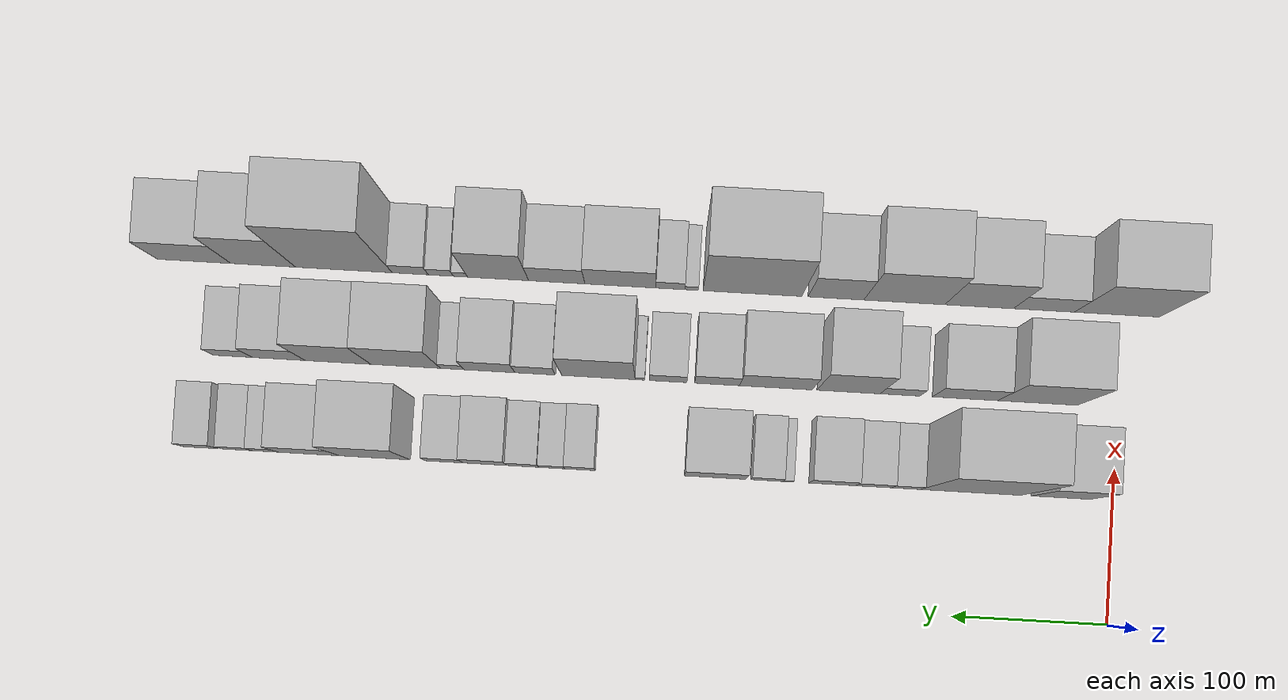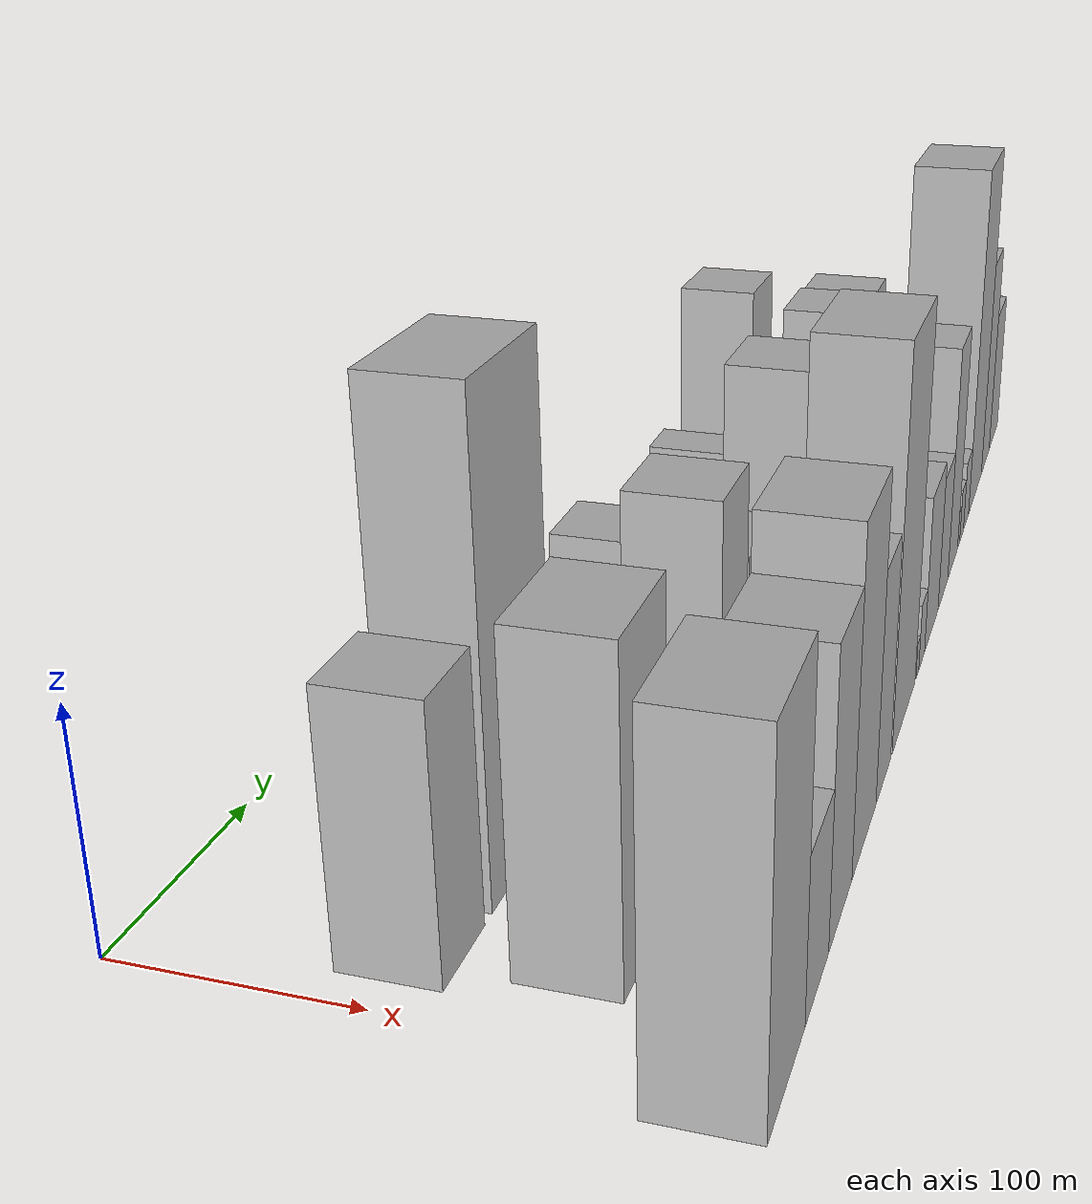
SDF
<sdf version="1.6">
 <world name="default">
  <model name="building_17">
   <static>1</static>
   <pose>100.0000 33.8189 0 0.000000 0.000000 0.000000</pose>
   <link name="link">
    <pose>0 0 55.50 0 0 0</pose>
    <collision name="collision"><geometry><box><size>40.0000 37.5027 111.0000</size></box></geometry></collision>
    <visual name="visual">
     <cast_shadows>0</cast_shadows>
     <geometry><box><size>40.0000 37.5027 111.0000</size></box></geometry>
     <material>
      <script>
       <uri>model://HANNAS_wall/materials/scripts</uri>
       <uri>model://HANNAS_wall/materials/textures</uri>
       <name>vrc/HANNAS_wall</name>
      </script>
     </material>
    </visual>
   </link>
  </model>
  <model name="building_18">
   <static>1</static>
   <pose>100.0000 91.8025 0 0.000000 0.000000 0.000000</pose>
   <link name="link">
    <pose>0 0 100.50 0 0 0</pose>
    <collision name="collision"><geometry><box><size>40.0000 64.4647 201.0000</size></box></geometry></collision>
    <visual name="visual">
     <cast_shadows>0</cast_shadows>
     <geometry><box><size>40.0000 64.4647 201.0000</size></box></geometry>
     <material>
      <script>
       <uri>model://HANNAS_wall/materials/scripts</uri>
       <uri>model://HANNAS_wall/materials/textures</uri>
       <name>vrc/HANNAS_wall</name>
      </script>
     </material>
    </visual>
   </link>
  </model>
  <model name="building_19">
   <static>1</static>
   <pose>100.0000 133.2769 0 0.000000 0.000000 0.000000</pose>
   <link name="link">
    <pose>0 0 18.00 0 0 0</pose>
    <collision name="collision"><geometry><box><size>40.0000 18.4841 36.0000</size></box></geometry></collision>
    <visual name="visual">
     <cast_shadows>0</cast_shadows>
     <geometry><box><size>40.0000 18.4841 36.0000</size></box></geometry>
     <material>
      <script>
       <uri>model://HANNAS_wall/materials/scripts</uri>
       <uri>model://HANNAS_wall/materials/textures</uri>
       <name>vrc/HANNAS_wall</name>
      </script>
     </material>
    </visual>
   </link>
  </model>
  <model name="building_20">
   <static>1</static>
   <pose>100.0000 154.1887 0 0.000000 0.000000 0.000000</pose>
   <link name="link">
    <pose>0 0 19.50 0 0 0</pose>
    <collision name="collision"><geometry><box><size>40.0000 23.3394 39.0000</size></box></geometry></collision>
    <visual name="visual">
     <cast_shadows>0</cast_shadows>
     <geometry><box><size>40.0000 23.3394 39.0000</size></box></geometry>
     <material>
      <script>
       <uri>model://HANNAS_wall/materials/scripts</uri>
       <uri>model://HANNAS_wall/materials/textures</uri>
       <name>vrc/HANNAS_wall</name>
      </script>
     </material>
    </visual>
   </link>
  </model>
  <model name="building_21">
   <static>1</static>
   <pose>100.0000 180.8132 0 0.000000 0.000000 0.000000</pose>
   <link name="link">
    <pose>0 0 25.50 0 0 0</pose>
    <collision name="collision"><geometry><box><size>40.0000 29.9097 51.0000</size></box></geometry></collision>
    <visual name="visual">
     <cast_shadows>0</cast_shadows>
     <geometry><box><size>40.0000 29.9097 51.0000</size></box></geometry>
     <material>
      <script>
       <uri>model://HANNAS_wall/materials/scripts</uri>
       <uri>model://HANNAS_wall/materials/textures</uri>
       <name>vrc/HANNAS_wall</name>
      </script>
     </material>
    </visual>
   </link>
  </model>
  <model name="building_22">
   <static>1</static>
   <pose>100.0000 209.1405 0 0.000000 0.000000 0.000000</pose>
   <link name="link">
    <pose>0 0 7.50 0 0 0</pose>
    <collision name="collision"><geometry><box><size>40.0000 6.7450 15.0000</size></box></geometry></collision>
    <visual name="visual">
     <cast_shadows>0</cast_shadows>
     <geometry><box><size>40.0000 6.7450 15.0000</size></box></geometry>
     <material>
      <script>
       <uri>model://HANNAS_wall/materials/scripts</uri>
       <uri>model://HANNAS_wall/materials/textures</uri>
       <name>vrc/HANNAS_wall</name>
      </script>
     </material>
    </visual>
   </link>
  </model>
  <model name="building_23">
   <static>1</static>
   <pose>100.0000 222.8368 0 0.000000 0.000000 0.000000</pose>
   <link name="link">
    <pose>0 0 18.00 0 0 0</pose>
    <collision name="collision"><geometry><box><size>40.0000 20.6476 36.0000</size></box></geometry></collision>
    <visual name="visual">
     <cast_shadows>0</cast_shadows>
     <geometry><box><size>40.0000 20.6476 36.0000</size></box></geometry>
     <material>
      <script>
       <uri>model://HANNAS_wall/materials/scripts</uri>
       <uri>model://HANNAS_wall/materials/textures</uri>
       <name>vrc/HANNAS_wall</name>
      </script>
     </material>
    </visual>
   </link>
  </model>
  <model name="building_24">
   <static>1</static>
   <pose>100.0000 255.9552 0 0.000000 0.000000 0.000000</pose>
   <link name="link">
    <pose>0 0 34.50 0 0 0</pose>
    <collision name="collision"><geometry><box><size>40.0000 39.5892 69.0000</size></box></geometry></collision>
    <visual name="visual">
     <cast_shadows>0</cast_shadows>
     <geometry><box><size>40.0000 39.5892 69.0000</size></box></geometry>
     <material>
      <script>
       <uri>model://HANNAS_wall/materials/scripts</uri>
       <uri>model://HANNAS_wall/materials/textures</uri>
       <name>vrc/HANNAS_wall</name>
      </script>
     </material>
    </visual>
   </link>
  </model>
  <model name="building_25">
   <static>1</static>
   <pose>100.0000 342.8090 0 0.000000 0.000000 0.000000</pose>
   <link name="link">
    <pose>0 0 18.00 0 0 0</pose>
    <collision name="collision"><geometry><box><size>40.0000 19.3728 36.0000</size></box></geometry></collision>
    <visual name="visual">
     <cast_shadows>0</cast_shadows>
     <geometry><box><size>40.0000 19.3728 36.0000</size></box></geometry>
     <material>
      <script>
       <uri>model://HANNAS_wall/materials/scripts</uri>
       <uri>model://HANNAS_wall/materials/textures</uri>
       <name>vrc/HANNAS_wall</name>
      </script>
     </material>
    </visual>
   </link>
  </model>
  <model name="building_26">
   <static>1</static>
   <pose>100.0000 360.8640 0 0.000000 0.000000 0.000000</pose>
   <link name="link">
    <pose>0 0 15.00 0 0 0</pose>
    <collision name="collision"><geometry><box><size>40.0000 16.7372 30.0000</size></box></geometry></collision>
    <visual name="visual">
     <cast_shadows>0</cast_shadows>
     <geometry><box><size>40.0000 16.7372 30.0000</size></box></geometry>
     <material>
      <script>
       <uri>model://HANNAS_wall/materials/scripts</uri>
       <uri>model://HANNAS_wall/materials/textures</uri>
       <name>vrc/HANNAS_wall</name>
      </script>
     </material>
    </visual>
   </link>
  </model>
  <model name="building_27">
   <static>1</static>
   <pose>100.0000 379.3544 0 0.000000 0.000000 0.000000</pose>
   <link name="link">
    <pose>0 0 18.00 0 0 0</pose>
    <collision name="collision"><geometry><box><size>40.0000 20.2437 36.0000</size></box></geometry></collision>
    <visual name="visual">
     <cast_shadows>0</cast_shadows>
     <geometry><box><size>40.0000 20.2437 36.0000</size></box></geometry>
     <material>
      <script>
       <uri>model://HANNAS_wall/materials/scripts</uri>
       <uri>model://HANNAS_wall/materials/textures</uri>
       <name>vrc/HANNAS_wall</name>
      </script>
     </material>
    </visual>
   </link>
  </model>
  <model name="building_28">
   <static>1</static>
   <pose>100.0000 403.6639 0 0.000000 0.000000 0.000000</pose>
   <link name="link">
    <pose>0 0 27.00 0 0 0</pose>
    <collision name="collision"><geometry><box><size>40.0000 28.3753 54.0000</size></box></geometry></collision>
    <visual name="visual">
     <cast_shadows>0</cast_shadows>
     <geometry><box><size>40.0000 28.3753 54.0000</size></box></geometry>
     <material>
      <script>
       <uri>model://HANNAS_wall/materials/scripts</uri>
       <uri>model://HANNAS_wall/materials/textures</uri>
       <name>vrc/HANNAS_wall</name>
      </script>
     </material>
    </visual>
   </link>
  </model>
  <model name="building_29">
   <static>1</static>
   <pose>100.0000 429.9659 0 0.000000 0.000000 0.000000</pose>
   <link name="link">
    <pose>0 0 21.00 0 0 0</pose>
    <collision name="collision"><geometry><box><size>40.0000 24.2287 42.0000</size></box></geometry></collision>
    <visual name="visual">
     <cast_shadows>0</cast_shadows>
     <geometry><box><size>40.0000 24.2287 42.0000</size></box></geometry>
     <material>
      <script>
       <uri>model://HANNAS_wall/materials/scripts</uri>
       <uri>model://HANNAS_wall/materials/textures</uri>
       <name>vrc/HANNAS_wall</name>
      </script>
     </material>
    </visual>
   </link>
  </model>
  <model name="building_30">
   <static>1</static>
   <pose>100.0000 474.9152 0 0.000000 0.000000 0.000000</pose>
   <link name="link">
    <pose>0 0 61.50 0 0 0</pose>
    <collision name="collision"><geometry><box><size>40.0000 45.6700 123.0000</size></box></geometry></collision>
    <visual name="visual">
     <cast_shadows>0</cast_shadows>
     <geometry><box><size>40.0000 45.6700 123.0000</size></box></geometry>
     <material>
      <script>
       <uri>model://HANNAS_wall/materials/scripts</uri>
       <uri>model://HANNAS_wall/materials/textures</uri>
       <name>vrc/HANNAS_wall</name>
      </script>
     </material>
    </visual>
   </link>
  </model>
  <model name="building_31">
   <static>1</static>
   <pose>100.0000 517.3630 0 0.000000 0.000000 0.000000</pose>
   <link name="link">
    <pose>0 0 34.50 0 0 0</pose>
    <collision name="collision"><geometry><box><size>40.0000 39.2256 69.0000</size></box></geometry></collision>
    <visual name="visual">
     <cast_shadows>0</cast_shadows>
     <geometry><box><size>40.0000 39.2256 69.0000</size></box></geometry>
     <material>
      <script>
       <uri>model://HANNAS_wall/materials/scripts</uri>
       <uri>model://HANNAS_wall/materials/textures</uri>
       <name>vrc/HANNAS_wall</name>
      </script>
     </material>
    </visual>
   </link>
  </model>
  <model name="building_32">
   <static>1</static>
   <pose>100.0000 545.3870 0 0.000000 0.000000 0.000000</pose>
   <link name="link">
    <pose>0 0 16.50 0 0 0</pose>
    <collision name="collision"><geometry><box><size>40.0000 16.8225 33.0000</size></box></geometry></collision>
    <visual name="visual">
     <cast_shadows>0</cast_shadows>
     <geometry><box><size>40.0000 16.8225 33.0000</size></box></geometry>
     <material>
      <script>
       <uri>model://HANNAS_wall/materials/scripts</uri>
       <uri>model://HANNAS_wall/materials/textures</uri>
       <name>vrc/HANNAS_wall</name>
      </script>
     </material>
    </visual>
   </link>
  </model>
  <model name="building_33">
   <static>1</static>
   <pose>100.0000 563.3105 0 0.000000 0.000000 0.000000</pose>
   <link name="link">
    <pose>0 0 16.50 0 0 0</pose>
    <collision name="collision"><geometry><box><size>40.0000 19.0244 33.0000</size></box></geometry></collision>
    <visual name="visual">
     <cast_shadows>0</cast_shadows>
     <geometry><box><size>40.0000 19.0244 33.0000</size></box></geometry>
     <material>
      <script>
       <uri>model://HANNAS_wall/materials/scripts</uri>
       <uri>model://HANNAS_wall/materials/textures</uri>
       <name>vrc/HANNAS_wall</name>
      </script>
     </material>
    </visual>
   </link>
  </model>
  <model name="building_34">
   <static>1</static>
   <pose>100.0000 586.9795 0 0.000000 0.000000 0.000000</pose>
   <link name="link">
    <pose>0 0 19.50 0 0 0</pose>
    <collision name="collision"><geometry><box><size>40.0000 22.3135 39.0000</size></box></geometry></collision>
    <visual name="visual">
     <cast_shadows>0</cast_shadows>
     <geometry><box><size>40.0000 22.3135 39.0000</size></box></geometry>
     <material>
      <script>
       <uri>model://HANNAS_wall/materials/scripts</uri>
       <uri>model://HANNAS_wall/materials/textures</uri>
       <name>vrc/HANNAS_wall</name>
      </script>
     </material>
    </visual>
   </link>
  </model>
  <model name="building_54">
   <static>1</static>
   <pose>160.0000 51.5377 0 0.000000 0.000000 0.000000</pose>
   <link name="link">
    <pose>0 0 67.50 0 0 0</pose>
    <collision name="collision"><geometry><box><size>40.0000 51.4670 135.0000</size></box></geometry></collision>
    <visual name="visual">
     <cast_shadows>0</cast_shadows>
     <geometry><box><size>40.0000 51.4670 135.0000</size></box></geometry>
     <material>
      <script>
       <uri>model://HANNAS_wall/materials/scripts</uri>
       <uri>model://HANNAS_wall/materials/textures</uri>
       <name>vrc/HANNAS_wall</name>
      </script>
     </material>
    </visual>
   </link>
  </model>
  <model name="building_55">
   <static>1</static>
   <pose>160.0000 98.3015 0 0.000000 0.000000 0.000000</pose>
   <link name="link">
    <pose>0 0 37.50 0 0 0</pose>
    <collision name="collision"><geometry><box><size>40.0000 42.0606 75.0000</size></box></geometry></collision>
    <visual name="visual">
     <cast_shadows>0</cast_shadows>
     <geometry><box><size>40.0000 42.0606 75.0000</size></box></geometry>
     <material>
      <script>
       <uri>model://HANNAS_wall/materials/scripts</uri>
       <uri>model://HANNAS_wall/materials/textures</uri>
       <name>vrc/HANNAS_wall</name>
      </script>
     </material>
    </visual>
   </link>
  </model>
  <model name="building_56">
   <static>1</static>
   <pose>160.0000 140.1348 0 0.000000 0.000000 0.000000</pose>
   <link name="link">
    <pose>0 0 24.00 0 0 0</pose>
    <collision name="collision"><geometry><box><size>40.0000 25.6060 48.0000</size></box></geometry></collision>
    <visual name="visual">
     <cast_shadows>0</cast_shadows>
     <geometry><box><size>40.0000 25.6060 48.0000</size></box></geometry>
     <material>
      <script>
       <uri>model://HANNAS_wall/materials/scripts</uri>
       <uri>model://HANNAS_wall/materials/textures</uri>
       <name>vrc/HANNAS_wall</name>
      </script>
     </material>
    </visual>
   </link>
  </model>
  <model name="building_57">
   <static>1</static>
   <pose>160.0000 173.3539 0 0.000000 0.000000 0.000000</pose>
   <link name="link">
    <pose>0 0 64.50 0 0 0</pose>
    <collision name="collision"><geometry><box><size>40.0000 40.8324 129.0000</size></box></geometry></collision>
    <visual name="visual">
     <cast_shadows>0</cast_shadows>
     <geometry><box><size>40.0000 40.8324 129.0000</size></box></geometry>
     <material>
      <script>
       <uri>model://HANNAS_wall/materials/scripts</uri>
       <uri>model://HANNAS_wall/materials/textures</uri>
       <name>vrc/HANNAS_wall</name>
      </script>
     </material>
    </visual>
   </link>
  </model>
  <model name="building_58">
   <static>1</static>
   <pose>160.0000 220.1656 0 0.000000 0.000000 0.000000</pose>
   <link name="link">
    <pose>0 0 43.50 0 0 0</pose>
    <collision name="collision"><geometry><box><size>40.0000 46.7909 87.0000</size></box></geometry></collision>
    <visual name="visual">
     <cast_shadows>0</cast_shadows>
     <geometry><box><size>40.0000 46.7909 87.0000</size></box></geometry>
     <material>
      <script>
       <uri>model://HANNAS_wall/materials/scripts</uri>
       <uri>model://HANNAS_wall/materials/textures</uri>
       <name>vrc/HANNAS_wall</name>
      </script>
     </material>
    </visual>
   </link>
  </model>
  <model name="building_59">
   <static>1</static>
   <pose>160.0000 258.0709 0 0.000000 0.000000 0.000000</pose>
   <link name="link">
    <pose>0 0 28.50 0 0 0</pose>
    <collision name="collision"><geometry><box><size>40.0000 29.0197 57.0000</size></box></geometry></collision>
    <visual name="visual">
     <cast_shadows>0</cast_shadows>
     <geometry><box><size>40.0000 29.0197 57.0000</size></box></geometry>
     <material>
      <script>
       <uri>model://HANNAS_wall/materials/scripts</uri>
       <uri>model://HANNAS_wall/materials/textures</uri>
       <name>vrc/HANNAS_wall</name>
      </script>
     </material>
    </visual>
   </link>
  </model>
  <model name="building_60">
   <static>1</static>
   <pose>160.0000 289.6315 0 0.000000 0.000000 0.000000</pose>
   <link name="link">
    <pose>0 0 22.50 0 0 0</pose>
    <collision name="collision"><geometry><box><size>40.0000 24.1014 45.0000</size></box></geometry></collision>
    <visual name="visual">
     <cast_shadows>0</cast_shadows>
     <geometry><box><size>40.0000 24.1014 45.0000</size></box></geometry>
     <material>
      <script>
       <uri>model://HANNAS_wall/materials/scripts</uri>
       <uri>model://HANNAS_wall/materials/textures</uri>
       <name>vrc/HANNAS_wall</name>
      </script>
     </material>
    </visual>
   </link>
  </model>
  <model name="building_61">
   <static>1</static>
   <pose>160.0000 307.8120 0 0.000000 0.000000 0.000000</pose>
   <link name="link">
    <pose>0 0 7.50 0 0 0</pose>
    <collision name="collision"><geometry><box><size>40.0000 6.2595 15.0000</size></box></geometry></collision>
    <visual name="visual">
     <cast_shadows>0</cast_shadows>
     <geometry><box><size>40.0000 6.2595 15.0000</size></box></geometry>
     <material>
      <script>
       <uri>model://HANNAS_wall/materials/scripts</uri>
       <uri>model://HANNAS_wall/materials/textures</uri>
       <name>vrc/HANNAS_wall</name>
      </script>
     </material>
    </visual>
   </link>
  </model>
  <model name="building_62">
   <static>1</static>
   <pose>160.0000 334.6211 0 0.000000 0.000000 0.000000</pose>
   <link name="link">
    <pose>0 0 64.50 0 0 0</pose>
    <collision name="collision"><geometry><box><size>40.0000 47.3587 129.0000</size></box></geometry></collision>
    <visual name="visual">
     <cast_shadows>0</cast_shadows>
     <geometry><box><size>40.0000 47.3587 129.0000</size></box></geometry>
     <material>
      <script>
       <uri>model://HANNAS_wall/materials/scripts</uri>
       <uri>model://HANNAS_wall/materials/textures</uri>
       <name>vrc/HANNAS_wall</name>
      </script>
     </material>
    </visual>
   </link>
  </model>
  <model name="building_63">
   <static>1</static>
   <pose>160.0000 375.3211 0 0.000000 0.000000 0.000000</pose>
   <link name="link">
    <pose>0 0 25.50 0 0 0</pose>
    <collision name="collision"><geometry><box><size>40.0000 26.0413 51.0000</size></box></geometry></collision>
    <visual name="visual">
     <cast_shadows>0</cast_shadows>
     <geometry><box><size>40.0000 26.0413 51.0000</size></box></geometry>
     <material>
      <script>
       <uri>model://HANNAS_wall/materials/scripts</uri>
       <uri>model://HANNAS_wall/materials/textures</uri>
       <name>vrc/HANNAS_wall</name>
      </script>
     </material>
    </visual>
   </link>
  </model>
  <model name="building_64">
   <static>1</static>
   <pose>160.0000 404.7702 0 0.000000 0.000000 0.000000</pose>
   <link name="link">
    <pose>0 0 31.50 0 0 0</pose>
    <collision name="collision"><geometry><box><size>40.0000 32.8568 63.0000</size></box></geometry></collision>
    <visual name="visual">
     <cast_shadows>0</cast_shadows>
     <geometry><box><size>40.0000 32.8568 63.0000</size></box></geometry>
     <material>
      <script>
       <uri>model://HANNAS_wall/materials/scripts</uri>
       <uri>model://HANNAS_wall/materials/textures</uri>
       <name>vrc/HANNAS_wall</name>
      </script>
     </material>
    </visual>
   </link>
  </model>
  <model name="building_65">
   <static>1</static>
   <pose>160.0000 428.8798 0 0.000000 0.000000 0.000000</pose>
   <link name="link">
    <pose>0 0 15.00 0 0 0</pose>
    <collision name="collision"><geometry><box><size>40.0000 15.3624 30.0000</size></box></geometry></collision>
    <visual name="visual">
     <cast_shadows>0</cast_shadows>
     <geometry><box><size>40.0000 15.3624 30.0000</size></box></geometry>
     <material>
      <script>
       <uri>model://HANNAS_wall/materials/scripts</uri>
       <uri>model://HANNAS_wall/materials/textures</uri>
       <name>vrc/HANNAS_wall</name>
      </script>
     </material>
    </visual>
   </link>
  </model>
  <model name="building_66">
   <static>1</static>
   <pose>160.0000 459.0435 0 0.000000 0.000000 0.000000</pose>
   <link name="link">
    <pose>0 0 60.00 0 0 0</pose>
    <collision name="collision"><geometry><box><size>40.0000 44.9650 120.0000</size></box></geometry></collision>
    <visual name="visual">
     <cast_shadows>0</cast_shadows>
     <geometry><box><size>40.0000 44.9650 120.0000</size></box></geometry>
     <material>
      <script>
       <uri>model://HANNAS_wall/materials/scripts</uri>
       <uri>model://HANNAS_wall/materials/textures</uri>
       <name>vrc/HANNAS_wall</name>
      </script>
     </material>
    </visual>
   </link>
  </model>
  <model name="building_67">
   <static>1</static>
   <pose>160.0000 502.7037 0 0.000000 0.000000 0.000000</pose>
   <link name="link">
    <pose>0 0 58.50 0 0 0</pose>
    <collision name="collision"><geometry><box><size>40.0000 42.3555 117.0000</size></box></geometry></collision>
    <visual name="visual">
     <cast_shadows>0</cast_shadows>
     <geometry><box><size>40.0000 42.3555 117.0000</size></box></geometry>
     <material>
      <script>
       <uri>model://HANNAS_wall/materials/scripts</uri>
       <uri>model://HANNAS_wall/materials/textures</uri>
       <name>vrc/HANNAS_wall</name>
      </script>
     </material>
    </visual>
   </link>
  </model>
  <model name="building_68">
   <static>1</static>
   <pose>160.0000 540.7209 0 0.000000 0.000000 0.000000</pose>
   <link name="link">
    <pose>0 0 33.00 0 0 0</pose>
    <collision name="collision"><geometry><box><size>40.0000 33.6788 66.0000</size></box></geometry></collision>
    <visual name="visual">
     <cast_shadows>0</cast_shadows>
     <geometry><box><size>40.0000 33.6788 66.0000</size></box></geometry>
     <material>
      <script>
       <uri>model://HANNAS_wall/materials/scripts</uri>
       <uri>model://HANNAS_wall/materials/textures</uri>
       <name>vrc/HANNAS_wall</name>
      </script>
     </material>
    </visual>
   </link>
  </model>
  <model name="building_69">
   <static>1</static>
   <pose>160.0000 570.2213 0 0.000000 0.000000 0.000000</pose>
   <link name="link">
    <pose>0 0 22.50 0 0 0</pose>
    <collision name="collision"><geometry><box><size>40.0000 25.3220 45.0000</size></box></geometry></collision>
    <visual name="visual">
     <cast_shadows>0</cast_shadows>
     <geometry><box><size>40.0000 25.3220 45.0000</size></box></geometry>
     <material>
      <script>
       <uri>model://HANNAS_wall/materials/scripts</uri>
       <uri>model://HANNAS_wall/materials/textures</uri>
       <name>vrc/HANNAS_wall</name>
      </script>
     </material>
    </visual>
   </link>
  </model>
  <model name="building_85">
   <static>1</static>
   <pose>220.0000 3.1957 0 0.000000 0.000000 0.000000</pose>
   <link name="link">
    <pose>0 0 72.00 0 0 0</pose>
    <collision name="collision"><geometry><box><size>40.0000 54.5738 144.0000</size></box></geometry></collision>
    <visual name="visual">
     <cast_shadows>0</cast_shadows>
     <geometry><box><size>40.0000 54.5738 144.0000</size></box></geometry>
     <material>
      <script>
       <uri>model://HANNAS_wall/materials/scripts</uri>
       <uri>model://HANNAS_wall/materials/textures</uri>
       <name>vrc/HANNAS_wall</name>
      </script>
     </material>
    </visual>
   </link>
  </model>
  <model name="building_86">
   <static>1</static>
   <pose>220.0000 50.1913 0 0.000000 0.000000 0.000000</pose>
   <link name="link">
    <pose>0 0 33.00 0 0 0</pose>
    <collision name="collision"><geometry><box><size>40.0000 39.4175 66.0000</size></box></geometry></collision>
    <visual name="visual">
     <cast_shadows>0</cast_shadows>
     <geometry><box><size>40.0000 39.4175 66.0000</size></box></geometry>
     <material>
      <script>
       <uri>model://HANNAS_wall/materials/scripts</uri>
       <uri>model://HANNAS_wall/materials/textures</uri>
       <name>vrc/HANNAS_wall</name>
      </script>
     </material>
    </visual>
   </link>
  </model>
  <model name="building_87">
   <static>1</static>
   <pose>220.0000 92.0493 0 0.000000 0.000000 0.000000</pose>
   <link name="link">
    <pose>0 0 60.00 0 0 0</pose>
    <collision name="collision"><geometry><box><size>40.0000 44.2985 120.0000</size></box></geometry></collision>
    <visual name="visual">
     <cast_shadows>0</cast_shadows>
     <geometry><box><size>40.0000 44.2985 120.0000</size></box></geometry>
     <material>
      <script>
       <uri>model://HANNAS_wall/materials/scripts</uri>
       <uri>model://HANNAS_wall/materials/textures</uri>
       <name>vrc/HANNAS_wall</name>
      </script>
     </material>
    </visual>
   </link>
  </model>
  <model name="building_88">
   <static>1</static>
   <pose>220.0000 140.4188 0 0.000000 0.000000 0.000000</pose>
   <link name="link">
    <pose>0 0 72.00 0 0 0</pose>
    <collision name="collision"><geometry><box><size>40.0000 52.4407 144.0000</size></box></geometry></collision>
    <visual name="visual">
     <cast_shadows>0</cast_shadows>
     <geometry><box><size>40.0000 52.4407 144.0000</size></box></geometry>
     <material>
      <script>
       <uri>model://HANNAS_wall/materials/scripts</uri>
       <uri>model://HANNAS_wall/materials/textures</uri>
       <name>vrc/HANNAS_wall</name>
      </script>
     </material>
    </visual>
   </link>
  </model>
  <model name="building_89">
   <static>1</static>
   <pose>220.0000 184.6811 0 0.000000 0.000000 0.000000</pose>
   <link name="link">
    <pose>0 0 51.00 0 0 0</pose>
    <collision name="collision"><geometry><box><size>40.0000 36.0838 102.0000</size></box></geometry></collision>
    <visual name="visual">
     <cast_shadows>0</cast_shadows>
     <geometry><box><size>40.0000 36.0838 102.0000</size></box></geometry>
     <material>
      <script>
       <uri>model://HANNAS_wall/materials/scripts</uri>
       <uri>model://HANNAS_wall/materials/textures</uri>
       <name>vrc/HANNAS_wall</name>
      </script>
     </material>
    </visual>
   </link>
  </model>
  <model name="building_90">
   <static>1</static>
   <pose>220.0000 238.6538 0 0.000000 0.000000 0.000000</pose>
   <link name="link">
    <pose>0 0 90.00 0 0 0</pose>
    <collision name="collision"><geometry><box><size>40.0000 63.8616 180.0000</size></box></geometry></collision>
    <visual name="visual">
     <cast_shadows>0</cast_shadows>
     <geometry><box><size>40.0000 63.8616 180.0000</size></box></geometry>
     <material>
      <script>
       <uri>model://HANNAS_wall/materials/scripts</uri>
       <uri>model://HANNAS_wall/materials/textures</uri>
       <name>vrc/HANNAS_wall</name>
      </script>
     </material>
    </visual>
   </link>
  </model>
  <model name="building_91">
   <static>1</static>
   <pose>220.0000 277.9148 0 0.000000 0.000000 0.000000</pose>
   <link name="link">
    <pose>0 0 9.00 0 0 0</pose>
    <collision name="collision"><geometry><box><size>40.0000 8.6605 18.0000</size></box></geometry></collision>
    <visual name="visual">
     <cast_shadows>0</cast_shadows>
     <geometry><box><size>40.0000 8.6605 18.0000</size></box></geometry>
     <material>
      <script>
       <uri>model://HANNAS_wall/materials/scripts</uri>
       <uri>model://HANNAS_wall/materials/textures</uri>
       <name>vrc/HANNAS_wall</name>
      </script>
     </material>
    </visual>
   </link>
  </model>
  <model name="building_92">
   <static>1</static>
   <pose>220.0000 291.5702 0 0.000000 0.000000 0.000000</pose>
   <link name="link">
    <pose>0 0 16.50 0 0 0</pose>
    <collision name="collision"><geometry><box><size>40.0000 18.6503 33.0000</size></box></geometry></collision>
    <visual name="visual">
     <cast_shadows>0</cast_shadows>
     <geometry><box><size>40.0000 18.6503 33.0000</size></box></geometry>
     <material>
      <script>
       <uri>model://HANNAS_wall/materials/scripts</uri>
       <uri>model://HANNAS_wall/materials/textures</uri>
       <name>vrc/HANNAS_wall</name>
      </script>
     </material>
    </visual>
   </link>
  </model>
  <model name="building_93">
   <static>1</static>
   <pose>220.0000 323.8942 0 0.000000 0.000000 0.000000</pose>
   <link name="link">
    <pose>0 0 39.00 0 0 0</pose>
    <collision name="collision"><geometry><box><size>40.0000 45.9977 78.0000</size></box></geometry></collision>
    <visual name="visual">
     <cast_shadows>0</cast_shadows>
     <geometry><box><size>40.0000 45.9977 78.0000</size></box></geometry>
     <material>
      <script>
       <uri>model://HANNAS_wall/materials/scripts</uri>
       <uri>model://HANNAS_wall/materials/textures</uri>
       <name>vrc/HANNAS_wall</name>
      </script>
     </material>
    </visual>
   </link>
  </model>
  <model name="building_94">
   <static>1</static>
   <pose>220.0000 365.0938 0 0.000000 0.000000 0.000000</pose>
   <link name="link">
    <pose>0 0 34.50 0 0 0</pose>
    <collision name="collision"><geometry><box><size>40.0000 36.4015 69.0000</size></box></geometry></collision>
    <visual name="visual">
     <cast_shadows>0</cast_shadows>
     <geometry><box><size>40.0000 36.4015 69.0000</size></box></geometry>
     <material>
      <script>
       <uri>model://HANNAS_wall/materials/scripts</uri>
       <uri>model://HANNAS_wall/materials/textures</uri>
       <name>vrc/HANNAS_wall</name>
      </script>
     </material>
    </visual>
   </link>
  </model>
  <model name="building_95">
   <static>1</static>
   <pose>220.0000 403.0539 0 0.000000 0.000000 0.000000</pose>
   <link name="link">
    <pose>0 0 61.50 0 0 0</pose>
    <collision name="collision"><geometry><box><size>40.0000 39.5186 123.0000</size></box></geometry></collision>
    <visual name="visual">
     <cast_shadows>0</cast_shadows>
     <geometry><box><size>40.0000 39.5186 123.0000</size></box></geometry>
     <material>
      <script>
       <uri>model://HANNAS_wall/materials/scripts</uri>
       <uri>model://HANNAS_wall/materials/textures</uri>
       <name>vrc/HANNAS_wall</name>
      </script>
     </material>
    </visual>
   </link>
  </model>
  <model name="building_96">
   <static>1</static>
   <pose>220.0000 427.3914 0 0.000000 0.000000 0.000000</pose>
   <link name="link">
    <pose>0 0 10.50 0 0 0</pose>
    <collision name="collision"><geometry><box><size>40.0000 9.1564 21.0000</size></box></geometry></collision>
    <visual name="visual">
     <cast_shadows>0</cast_shadows>
     <geometry><box><size>40.0000 9.1564 21.0000</size></box></geometry>
     <material>
      <script>
       <uri>model://HANNAS_wall/materials/scripts</uri>
       <uri>model://HANNAS_wall/materials/textures</uri>
       <name>vrc/HANNAS_wall</name>
      </script>
     </material>
    </visual>
   </link>
  </model>
  <model name="building_97">
   <static>1</static>
   <pose>220.0000 440.0450 0 0.000000 0.000000 0.000000</pose>
   <link name="link">
    <pose>0 0 15.00 0 0 0</pose>
    <collision name="collision"><geometry><box><size>40.0000 16.1509 30.0000</size></box></geometry></collision>
    <visual name="visual">
     <cast_shadows>0</cast_shadows>
     <geometry><box><size>40.0000 16.1509 30.0000</size></box></geometry>
     <material>
      <script>
       <uri>model://HANNAS_wall/materials/scripts</uri>
       <uri>model://HANNAS_wall/materials/textures</uri>
       <name>vrc/HANNAS_wall</name>
      </script>
     </material>
    </visual>
   </link>
  </model>
  <model name="building_98">
   <static>1</static>
   <pose>220.0000 459.7623 0 0.000000 0.000000 0.000000</pose>
   <link name="link">
    <pose>0 0 19.50 0 0 0</pose>
    <collision name="collision"><geometry><box><size>40.0000 23.2836 39.0000</size></box></geometry></collision>
    <visual name="visual">
     <cast_shadows>0</cast_shadows>
     <geometry><box><size>40.0000 23.2836 39.0000</size></box></geometry>
     <material>
      <script>
       <uri>model://HANNAS_wall/materials/scripts</uri>
       <uri>model://HANNAS_wall/materials/textures</uri>
       <name>vrc/HANNAS_wall</name>
      </script>
     </material>
    </visual>
   </link>
  </model>
  <model name="building_99">
   <static>1</static>
   <pose>220.0000 502.7676 0 0.000000 0.000000 0.000000</pose>
   <link name="link">
    <pose>0 0 96.00 0 0 0</pose>
    <collision name="collision"><geometry><box><size>40.0000 62.7271 192.0000</size></box></geometry></collision>
    <visual name="visual">
     <cast_shadows>0</cast_shadows>
     <geometry><box><size>40.0000 62.7271 192.0000</size></box></geometry>
     <material>
      <script>
       <uri>model://HANNAS_wall/materials/scripts</uri>
       <uri>model://HANNAS_wall/materials/textures</uri>
       <name>vrc/HANNAS_wall</name>
      </script>
     </material>
    </visual>
   </link>
  </model>
  <model name="building_100">
   <static>1</static>
   <pose>220.0000 555.0916 0 0.000000 0.000000 0.000000</pose>
   <link name="link">
    <pose>0 0 63.00 0 0 0</pose>
    <collision name="collision"><geometry><box><size>40.0000 41.9208 126.0000</size></box></geometry></collision>
    <visual name="visual">
     <cast_shadows>0</cast_shadows>
     <geometry><box><size>40.0000 41.9208 126.0000</size></box></geometry>
     <material>
      <script>
       <uri>model://HANNAS_wall/materials/scripts</uri>
       <uri>model://HANNAS_wall/materials/textures</uri>
       <name>vrc/HANNAS_wall</name>
      </script>
     </material>
    </visual>
   </link>
  </model>
  <model name="building_101">
   <static>1</static>
   <pose>220.0000 599.8399 0 0.000000 0.000000 0.000000</pose>
   <link name="link">
    <pose>0 0 42.00 0 0 0</pose>
    <collision name="collision"><geometry><box><size>40.0000 47.5757 84.0000</size></box></geometry></collision>
    <visual name="visual">
     <cast_shadows>0</cast_shadows>
     <geometry><box><size>40.0000 47.5757 84.0000</size></box></geometry>
     <material>
      <script>
       <uri>model://HANNAS_wall/materials/scripts</uri>
       <uri>model://HANNAS_wall/materials/textures</uri>
       <name>vrc/HANNAS_wall</name>
      </script>
     </material>
    </visual>
   </link>
  </model>
 </world>
</sdf>
